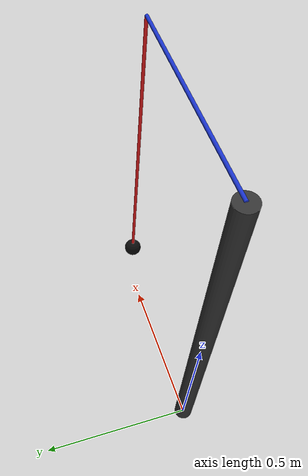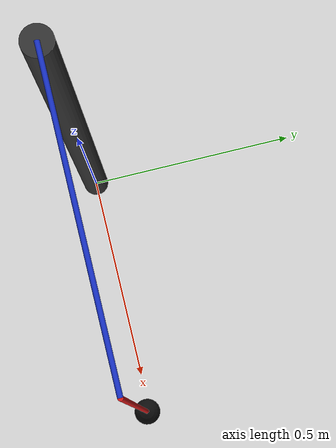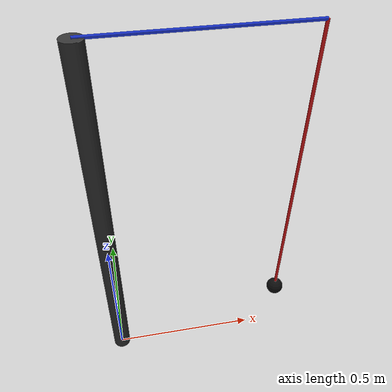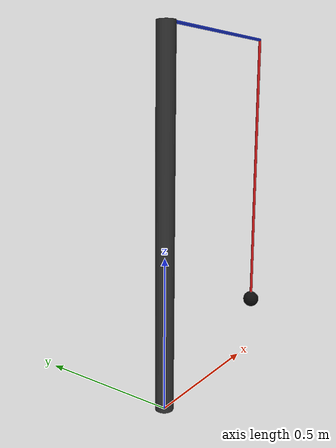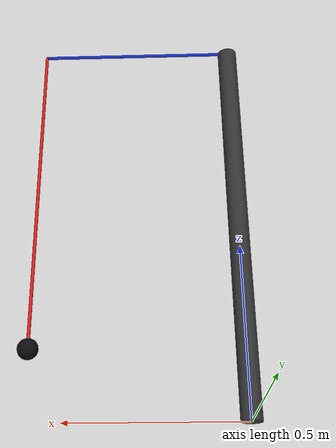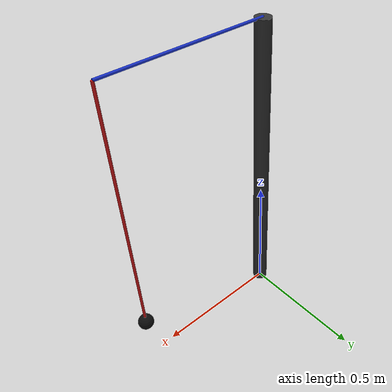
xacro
<?xml version="1.0"?>
<robot name="rotary_inverted_pendulum" xmlns:xacro="http://www.ros.org/wiki/xacro">
  <xacro:arg name="controllers_file" default=""/>

  <xacro:property name="arm_length" value="0.6"/>
  <xacro:property name="pole_length" value="1.0"/>
  <xacro:property name="rod_radius" value="0.005"/>
  <xacro:property name="tip_mass" value="0.2"/>
  <xacro:property name="tip_radius" value="0.03"/>
  <xacro:property name="pole_initial_deg" value="-180.0"/>
  <xacro:property name="pole_initial_rad" value="-3.14159265359"/>

  <link name="world"/>

  <link name="base_link">
    <inertial>
      <origin xyz="0 0 0.6" rpy="0 0 0"/>
      <mass value="3.0"/>
      <inertia ixx="0.360675" ixy="0.0" ixz="0.0" iyy="0.360675" iyz="0.0" izz="0.00135"/>
    </inertial>
    <visual>
      <origin xyz="0 0 0.6" rpy="0 0 0"/>
      <geometry>
        <cylinder radius="0.03" length="1.2"/>
      </geometry>
      <material name="base_gray">
        <color rgba="0.2 0.2 0.2 1.0"/>
      </material>
    </visual>
    <collision>
      <origin xyz="0 0 0.6" rpy="0 0 0"/>
      <geometry>
        <cylinder radius="0.03" length="1.2"/>
      </geometry>
    </collision>
  </link>

  <joint name="world_to_base" type="fixed">
    <parent link="world"/>
    <child link="base_link"/>
    <origin xyz="0 0 0" rpy="0 0 0"/>
  </joint>

  <link name="arm_link">
    <inertial>
      <origin xyz="0.3 0 0" rpy="0 0 0"/>
      <mass value="0.2"/>
      <inertia ixx="0.00000250" ixy="0.0" ixz="0.0" iyy="0.00600125" iyz="0.0" izz="0.00600125"/>
    </inertial>
    <visual>
      <origin xyz="0.3 0 0" rpy="0 1.57079632679 0"/>
      <geometry>
        <cylinder radius="${rod_radius}" length="${arm_length}"/>
      </geometry>
      <material name="arm_blue">
        <color rgba="0.1 0.2 0.8 1.0"/>
      </material>
    </visual>
    <collision>
      <origin xyz="0.3 0 0" rpy="0 1.57079632679 0"/>
      <geometry>
        <cylinder radius="${rod_radius}" length="${arm_length}"/>
      </geometry>
    </collision>
  </link>

  <link name="pole_link">
    <inertial>
      <origin xyz="0 0 0.5" rpy="0 0 0"/>
      <mass value="0.15"/>
      <inertia ixx="0.01250094" ixy="0.0" ixz="0.0" iyy="0.01250094" iyz="0.0" izz="0.00000188"/>
    </inertial>
    <visual>
      <origin xyz="0 0 0.5" rpy="0 0 0"/>
      <geometry>
        <cylinder radius="${rod_radius}" length="${pole_length}"/>
      </geometry>
      <material name="pole_red">
        <color rgba="0.85 0.1 0.1 1.0"/>
      </material>
    </visual>
    <collision>
      <origin xyz="0 0 0.5" rpy="0 0 0"/>
      <geometry>
        <cylinder radius="${rod_radius}" length="${pole_length}"/>
      </geometry>
    </collision>
  </link>

  <joint name="arm_joint" type="revolute">
    <parent link="base_link"/>
    <child link="arm_link"/>
    <origin xyz="0 0 1.2" rpy="0 0 0"/>
    <axis xyz="0 0 1"/>
    <limit lower="-6.283185307" upper="6.283185307" effort="30.0" velocity="30.0"/>
    <dynamics damping="0.005" friction="0.0"/>
  </joint>

  <joint name="pole_joint" type="revolute">
    <parent link="arm_link"/>
    <child link="pole_link"/>
    <origin xyz="${arm_length} 0 0" rpy="${pole_initial_rad} 0 0"/>
    <axis xyz="-1 0 0"/>
    <limit lower="-3.14159265359" upper="3.14159265359" effort="10.0" velocity="20.0"/>
    <dynamics damping="0.002" friction="0.0"/>
  </joint>

  <link name="pole_tip_mass_link">
    <inertial>
      <origin xyz="0 0 0" rpy="0 0 0"/>
      <mass value="${tip_mass}"/>
      <inertia
        ixx="${0.4 * tip_mass * tip_radius * tip_radius}"
        ixy="0.0"
        ixz="0.0"
        iyy="${0.4 * tip_mass * tip_radius * tip_radius}"
        iyz="0.0"
        izz="${0.4 * tip_mass * tip_radius * tip_radius}"/>
    </inertial>
    <visual>
      <origin xyz="0 0 0" rpy="0 0 0"/>
      <geometry>
        <sphere radius="${tip_radius}"/>
      </geometry>
      <material name="tip_mass_black">
        <color rgba="0.05 0.05 0.05 1.0"/>
      </material>
    </visual>
    <collision>
      <origin xyz="0 0 0" rpy="0 0 0"/>
      <geometry>
        <sphere radius="${tip_radius}"/>
      </geometry>
    </collision>
  </link>

  <joint name="pole_tip_mass_joint" type="fixed">
    <parent link="pole_link"/>
    <child link="pole_tip_mass_link"/>
    <origin xyz="0 0 ${pole_length}" rpy="0 0 0"/>
  </joint>

  <ros2_control name="GazeboSimSystem" type="system">
    <hardware>
      <plugin>gz_ros2_control/GazeboSimSystem</plugin>
    </hardware>

    <joint name="arm_joint">
      <command_interface name="effort"/>
      <state_interface name="position"/>
      <state_interface name="velocity"/>
      <state_interface name="effort"/>
    </joint>

    <joint name="pole_joint">
      <state_interface name="position"/>
      <state_interface name="velocity"/>
      <state_interface name="effort"/>
    </joint>
  </ros2_control>

  <gazebo>
    <plugin filename="libgz_ros2_control-system.so" name="gz_ros2_control::GazeboSimROS2ControlPlugin">
      <parameters>$(arg controllers_file)</parameters>
    </plugin>
    <plugin filename="gz-sim-joint-state-publisher-system" name="gz::sim::systems::JointStatePublisher">
      <topic>/world/default/model/rotary_inverted_pendulum/joint_state</topic>
    </plugin>
  </gazebo>
</robot>
